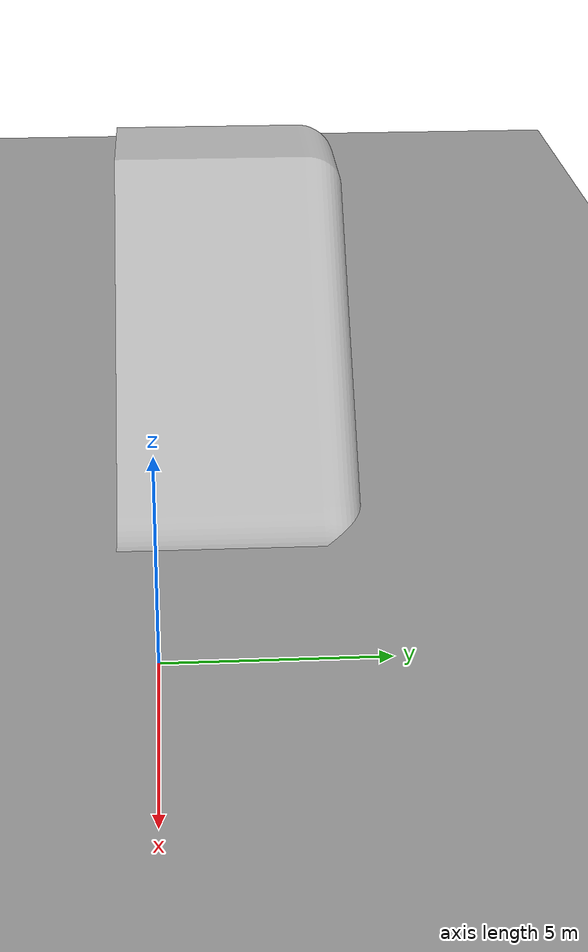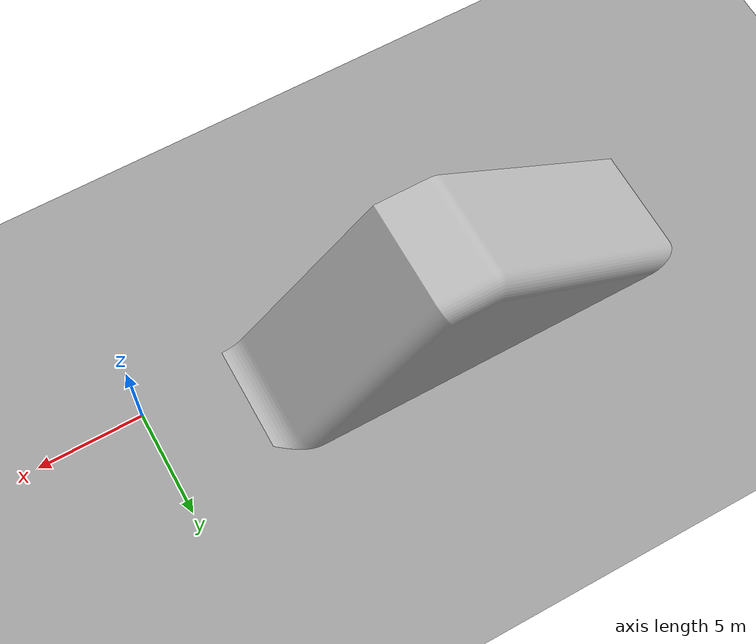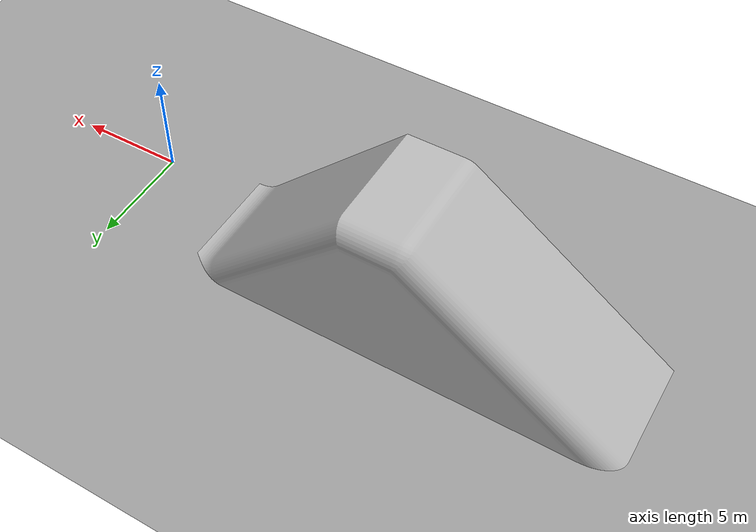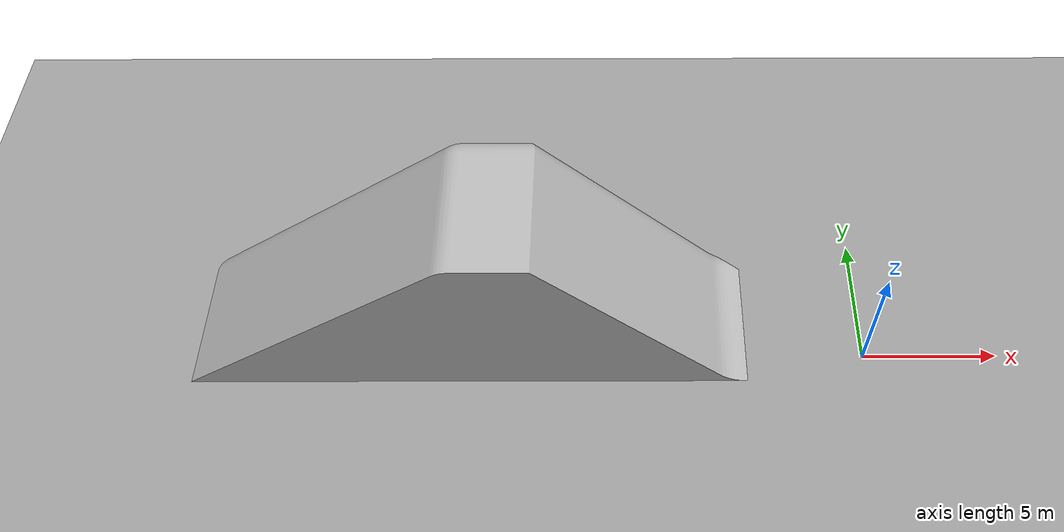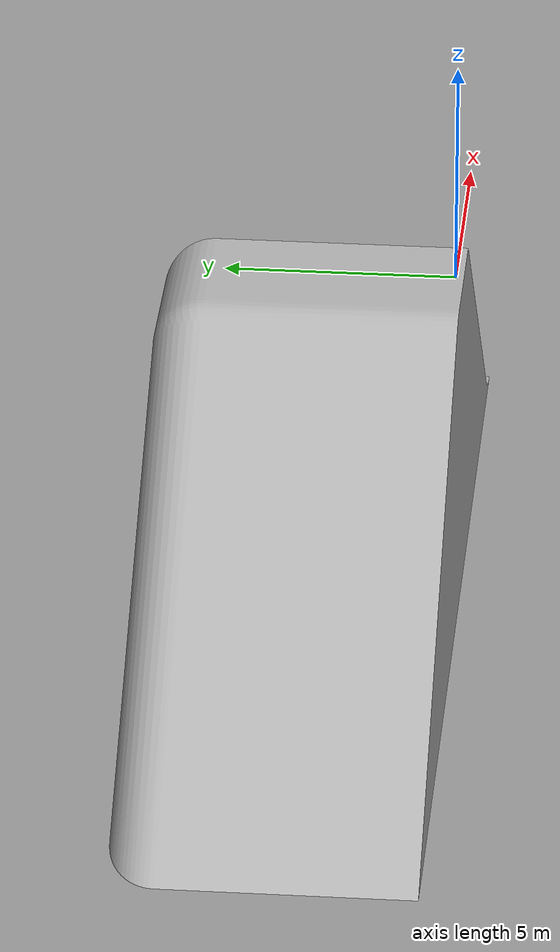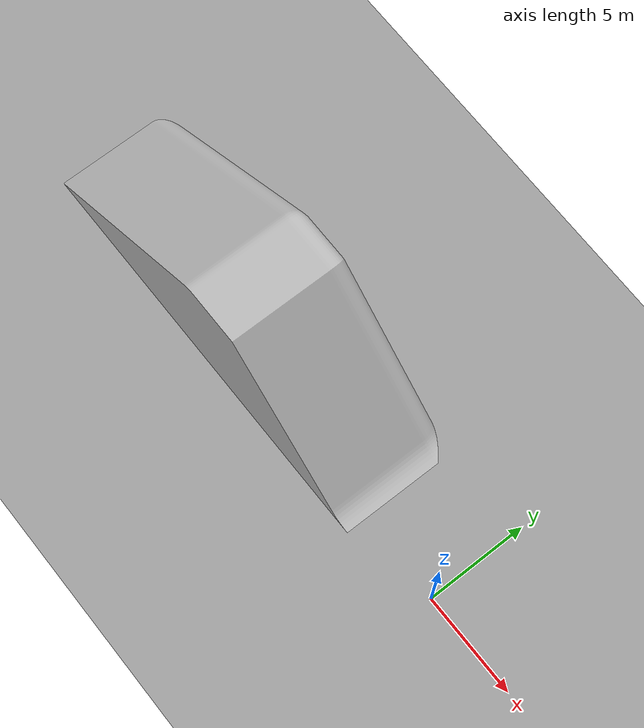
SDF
<?xml version="1.0" ?>
<sdf version="1.7">
  <world name="test_world">
    <gravity>0 0 -9.81</gravity>
    <atmosphere type="adiabatic"/>
    <scene>
      <ambient>0.4 0.4 0.4 1</ambient>
      <background>0.7 0.7 0.8 1</background>
    </scene>

    <!-- Sun -->
    <light name="sun" type="directional">
      <pose>0 0 100 0 0 0</pose>
      <cast_shadows>true</cast_shadows>
      <diffuse>1 1 1 1</diffuse>
      <specular>0.1 0.1 0.1 1</specular>
      <direction>-0.5 0.2 -1</direction>
      <attenuation>
        <range>1000</range>
        <constant>0.9</constant>
        <linear>0.01</linear>
        <quadratic>0.001</quadratic>
      </attenuation>
    </light>

    <!-- Local ground plane -->
    <model name="ground_plane_local">
      <static>true</static>
      <link name="link">
        <collision name="collision">
          <geometry>
            <plane>
              <normal>0 0 1</normal>
              <size>200 200</size>
            </plane>
          </geometry>
          <surface>
            <friction>
              <ode>
                <mu>1.0</mu>
                <mu2>1.0</mu2>
              </ode>
            </friction>
          </surface>
        </collision>
        <visual name="visual">
          <geometry>
            <plane>
              <normal>0 0 1</normal>
              <size>200 200</size>
            </plane>
          </geometry>
          <material>
            <ambient>0.5 0.5 0.5 1</ambient>
            <diffuse>0.6 0.6 0.6 1</diffuse>
          </material>
        </visual>
      </link>
    </model>

    <!-- Your terrain mesh -->
    <model name="test_route">
      <static>true</static>
      <pose>-5 -1 0 0 0 1.57</pose>
      <link name="hill_link">
        <collision name="hill_collision">
          <geometry>
            <mesh>
              <uri>../media/meshes/test_route.stl</uri>
              <scale>0.001 0.001 0.001</scale>
            </mesh>
          </geometry>
          <surface>
            <friction>
              <ode>
                <mu>1.0</mu>
                <mu2>1.0</mu2>
              </ode>
            </friction>
          </surface>
        </collision>
        <visual name="hill_visual">
          <geometry>
            <mesh>
              <uri>../media/meshes/test_route.stl</uri>
              <scale>0.001 0.001 0.001</scale>
            </mesh>
          </geometry>
          <material>
            <ambient>0.6 0.6 0.6 1</ambient>
            <diffuse>0.7 0.7 0.7 1</diffuse>
          </material>
        </visual>
      </link>
    </model>

  </world>
</sdf>
